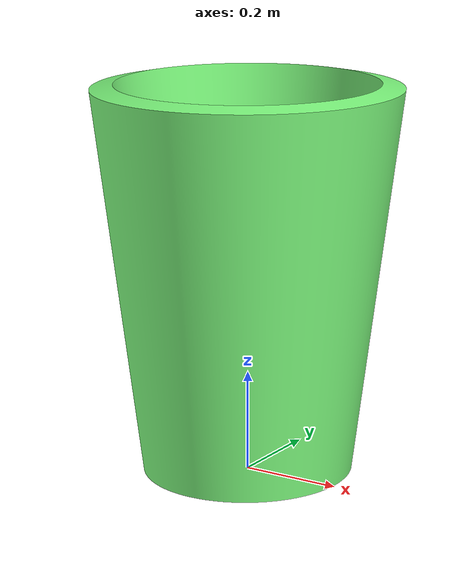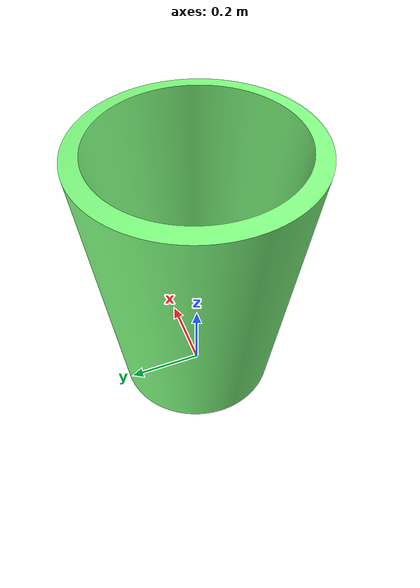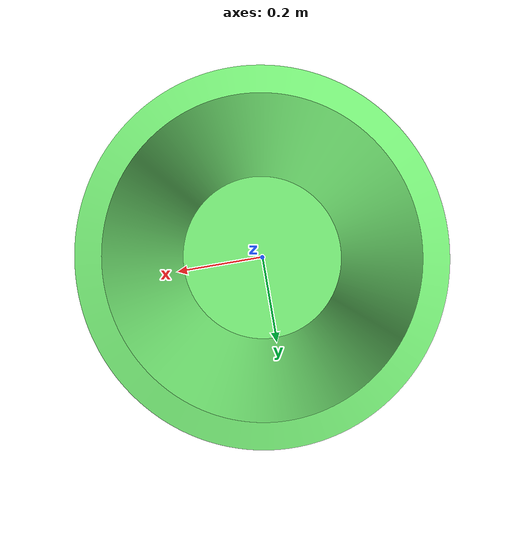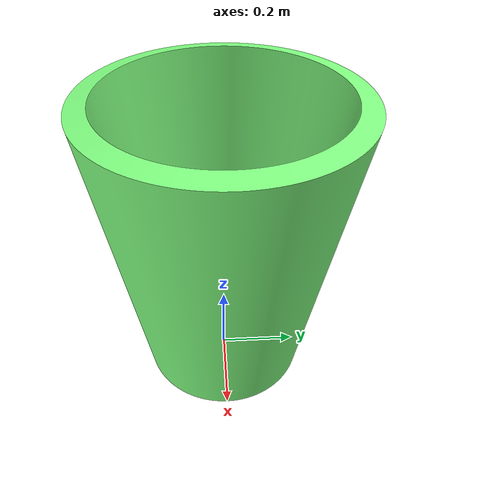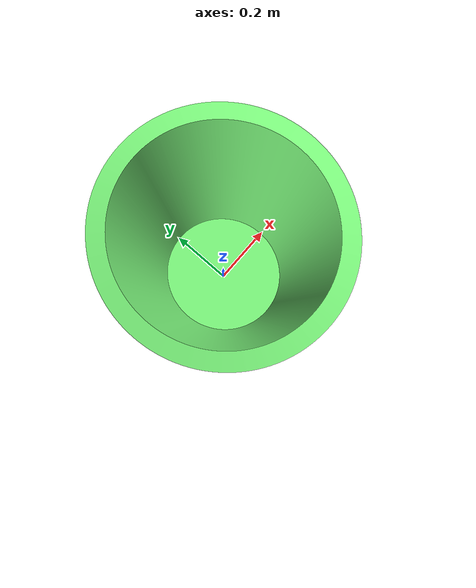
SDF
<?xml version="1.0" ?>
<sdf version="1.5">
  <model name="bin_1">
    <link name="link">
      <inertial>
        <pose>0 0 0.3683 0 0 0</pose>
        <mass>4.83076</mass>
        <inertia>
          <ixx>0.281534052</ixx>
          <ixy>0</ixy>
          <ixz>0</ixz>
          <iyy>0.281534052</iyy>
          <iyz>0</iyz>
          <izz>0.126222831</izz>
        </inertia>
      </inertial>

      <visual name="visual">
        <geometry>
          <mesh>
            <uri>model://bin_1/meshes/bin_final.dae</uri>
          </mesh>
        </geometry>
	<material>
		<ambient>0.5 1 0.5 1</ambient>
 	</material>
      </visual>

      <collision name="collision">
        <geometry>
          <mesh>
            <uri>model://bin_1/meshes/bin_final.dae</uri>
          </mesh>
        </geometry>
      </collision>
    </link>
  </model>
</sdf>
